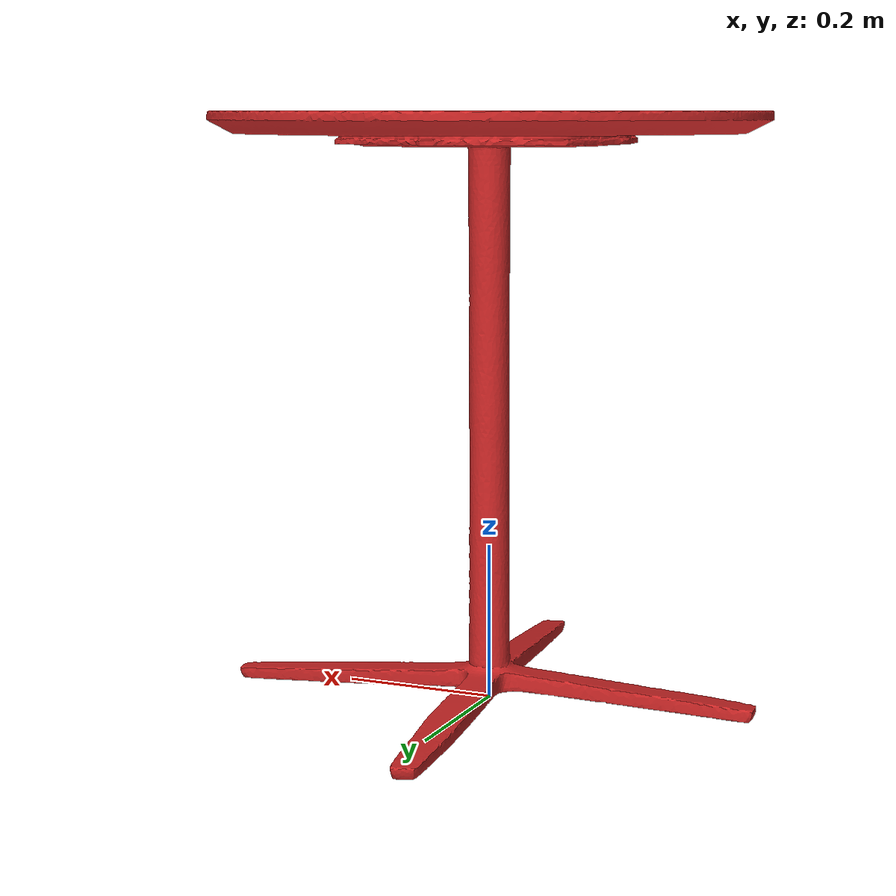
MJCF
<?xml version='1.0' encoding='utf-8'?>
<mujoco model="2real_round_table_scaled_visual_05pct">
  <compiler angle="radian" autolimits="true" meshdir="." texturedir="." />
  <asset>
    <mesh name="round_table_visual_mesh" file="base_visual_05pct.obj" scale="0.3743956185 0.3951534170 0.3734410835" />
    <texture name="round_table_diffuse" type="2d" file="texture_diffuse.png" />
    <material name="round_table_material" texture="round_table_diffuse" rgba="1 1 1 1" specular="0.28" shininess="0.35" />
  </asset>
  <worldbody>
    <body name="object">
      <geom name="round_table_visual" type="mesh" mesh="round_table_visual_mesh" euler="1.570796326794897 0 0" material="round_table_material" group="1" contype="0" conaffinity="0" mass="0" />
      <geom name="top_collision" type="cylinder" pos="0 0 0.735" size="0.35 0.015" group="3" contype="1" conaffinity="1" condim="4" friction="1.0 0.05 0.01" solref="0.004 1.0" solimp="0.95 0.99 0.001" rgba="0 0 0 0" />
      <geom name="pedestal_collision" type="cylinder" pos="0 0 0.375" size="0.035 0.345" group="3" contype="1" conaffinity="1" condim="3" friction="0.8 0.03 0.01" solref="0.006 1.0" solimp="0.95 0.99 0.001" rgba="0 0 0 0" />
      <geom name="base_foot_x_positive_collision" type="box" pos="0.150 0 0.015" size="0.150 0.0175 0.015" group="3" contype="1" conaffinity="1" condim="3" friction="0.8 0.03 0.01" solref="0.006 1.0" solimp="0.95 0.99 0.001" rgba="0 0 0 0" />
      <geom name="base_foot_x_negative_collision" type="box" pos="-0.150 0 0.015" size="0.150 0.0175 0.015" euler="0 0 3.141592653589793" group="3" contype="1" conaffinity="1" condim="3" friction="0.8 0.03 0.01" solref="0.006 1.0" solimp="0.95 0.99 0.001" rgba="0 0 0 0" />
      <geom name="base_foot_y_positive_collision" type="box" pos="0 0.150 0.015" size="0.0175 0.150 0.015" group="3" contype="1" conaffinity="1" condim="3" friction="0.8 0.03 0.01" solref="0.006 1.0" solimp="0.95 0.99 0.001" rgba="0 0 0 0" />
      <geom name="base_foot_y_negative_collision" type="box" pos="0 -0.150 0.015" size="0.0175 0.150 0.015" group="3" contype="1" conaffinity="1" condim="3" friction="0.8 0.03 0.01" solref="0.006 1.0" solimp="0.95 0.99 0.001" rgba="0 0 0 0" />
    </body>
  </worldbody>
</mujoco>
